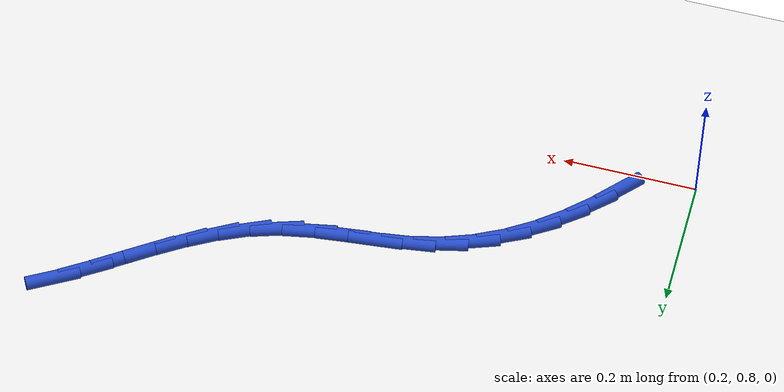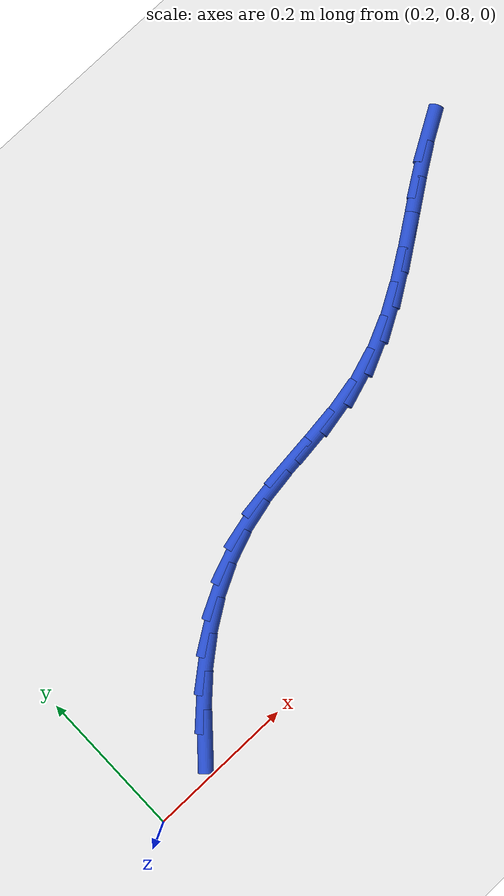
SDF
<sdf version="1.6">
 <world name="default">
  <model name="ground_plane">
   <static>1</static>
   <link name="link">
    <collision name="collision">
     <geometry><plane><normal>0 0 1</normal><size>100 100</size></plane></geometry>
     <surface><friction><ode><mu>100</mu><mu2>50</mu2></ode></friction></surface>
    </collision>
    <visual name="visual">
     <cast_shadows>0</cast_shadows>
     <geometry><plane><normal>0 0 1</normal><size>100 100</size></plane></geometry>
     <material>
      <script><uri>file://media/materials/scripts/gazebo.material</uri><name>Gazebo/WhiteGlow</name></script>
     </material>
    </visual>
   </link>
  </model>
  <model name="line">
   <link name="link_18">
    <pose>0.3087584846728439 0.8377570021700012 0.01 0 1.57 0.845212282976439</pose>
    <collision name="collision">
     <geometry><cylinder><radius>0.01</radius><length>0.08</length></cylinder></geometry>
    </collision>
    <visual name="visual">
     <material>
      <script><name>Gazebo/Blue</name><uri>file://media/materials/scripts/gazebo.material</uri></script>
     </material>
     <geometry><cylinder><radius>0.01</radius><length>0.08</length></cylinder></geometry>
    </visual>
   </link>
   <link name="link_19">
    <pose>0.3413151086751447 0.8744613583930186 0.01 0 1.57 0.7687470295034691</pose>
    <collision name="collision">
     <geometry><cylinder><radius>0.01</radius><length>0.08</length></cylinder></geometry>
    </collision>
    <visual name="visual">
     <material>
      <script><name>Gazebo/Blue</name><uri>file://media/materials/scripts/gazebo.material</uri></script>
     </material>
     <geometry><cylinder><radius>0.01</radius><length>0.08</length></cylinder></geometry>
    </visual>
   </link>
   <link name="link_20">
    <pose>0.3758646777508022 0.9078790902342675 0.01 0 1.57 0.6821018119404471</pose>
    <collision name="collision">
     <geometry><cylinder><radius>0.01</radius><length>0.08</length></cylinder></geometry>
    </collision>
    <visual name="visual">
     <material>
      <script><name>Gazebo/Blue</name><uri>file://media/materials/scripts/gazebo.material</uri></script>
     </material>
     <geometry><cylinder><radius>0.01</radius><length>0.08</length></cylinder></geometry>
    </visual>
   </link>
   <link name="link_21">
    <pose>0.412485047185849 0.9376200872659153 0.01 0 1.57 0.5849272882402394</pose>
    <collision name="collision">
     <geometry><cylinder><radius>0.01</radius><length>0.08</length></cylinder></geometry>
    </collision>
    <visual name="visual">
     <material>
      <script><name>Gazebo/Blue</name><uri>file://media/materials/scripts/gazebo.material</uri></script>
     </material>
     <geometry><cylinder><radius>0.01</radius><length>0.08</length></cylinder></geometry>
    </visual>
   </link>
   <link name="link_22">
    <pose>0.45125407226631703 0.9632942390601287 0.01 0 1.57 0.4775879944381283</pose>
    <collision name="collision">
     <geometry><cylinder><radius>0.01</radius><length>0.08</length></cylinder></geometry>
    </collision>
    <visual name="visual">
     <material>
      <script><name>Gazebo/Blue</name><uri>file://media/materials/scripts/gazebo.material</uri></script>
     </material>
     <geometry><cylinder><radius>0.01</radius><length>0.08</length></cylinder></geometry>
    </visual>
   </link>
   <link name="link_23">
    <pose>0.49224960827823894 0.9845114351890756 0.01 0 1.57 0.36145412227707635</pose>
    <collision name="collision">
     <geometry><cylinder><radius>0.01</radius><length>0.08</length></cylinder></geometry>
    </collision>
    <visual name="visual">
     <material>
      <script><name>Gazebo/Blue</name><uri>file://media/materials/scripts/gazebo.material</uri></script>
     </material>
     <geometry><cylinder><radius>0.01</radius><length>0.08</length></cylinder></geometry>
    </visual>
   </link>
   <link name="link_24">
    <pose>0.5355495105076465 1.0008815652249223 0.01 0 1.57 0.23987250766087118</pose>
    <collision name="collision">
     <geometry><cylinder><radius>0.01</radius><length>0.08</length></cylinder></geometry>
    </collision>
    <visual name="visual">
     <material>
      <script><name>Gazebo/Blue</name><uri>file://media/materials/scripts/gazebo.material</uri></script>
     </material>
     <geometry><cylinder><radius>0.01</radius><length>0.08</length></cylinder></geometry>
    </visual>
   </link>
   <link name="link_25">
    <pose>0.581217037028305 1.012051000995506 0.01 0 1.57 0.14384823755635906</pose>
    <collision name="collision">
     <geometry><cylinder><radius>0.01</radius><length>0.08</length></cylinder></geometry>
    </collision>
    <visual name="visual">
     <material>
      <script><name>Gazebo/Blue</name><uri>file://media/materials/scripts/gazebo.material</uri></script>
     </material>
     <geometry><cylinder><radius>0.01</radius><length>0.08</length></cylinder></geometry>
    </visual>
   </link>
   <link name="link_26">
    <pose>0.6288041666725926 1.0189439350289768 0.01 0 1.57 0.10541199539217004</pose>
    <collision name="collision">
     <geometry><cylinder><radius>0.01</radius><length>0.08</length></cylinder></geometry>
    </collision>
    <visual name="visual">
     <material>
      <script><name>Gazebo/Blue</name><uri>file://media/materials/scripts/gazebo.material</uri></script>
     </material>
     <geometry><cylinder><radius>0.01</radius><length>0.08</length></cylinder></geometry>
    </visual>
   </link>
   <link name="link_27">
    <pose>0.6772295002293567 1.0240675374313675 0.01 0 1.57 0.12316833886986119</pose>
    <collision name="collision">
     <geometry><cylinder><radius>0.01</radius><length>0.08</length></cylinder></geometry>
    </collision>
    <visual name="visual">
     <material>
      <script><name>Gazebo/Blue</name><uri>file://media/materials/scripts/gazebo.material</uri></script>
     </material>
     <geometry><cylinder><radius>0.01</radius><length>0.08</length></cylinder></geometry>
    </visual>
   </link>
   <link name="link_28">
    <pose>0.7253722699110264 1.0300273706896552 0.01 0 1.57 0.19850085061616227</pose>
    <collision name="collision">
     <geometry><cylinder><radius>0.01</radius><length>0.08</length></cylinder></geometry>
    </collision>
    <visual name="visual">
     <material>
      <script><name>Gazebo/Blue</name><uri>file://media/materials/scripts/gazebo.material</uri></script>
     </material>
     <geometry><cylinder><radius>0.01</radius><length>0.08</length></cylinder></geometry>
    </visual>
   </link>
   <link name="link_29">
    <pose>0.772111707930032 1.0394289972908177 0.01 0 1.57 0.3248334006243878</pose>
    <collision name="collision">
     <geometry><cylinder><radius>0.01</radius><length>0.08</length></cylinder></geometry>
    </collision>
    <visual name="visual">
     <material>
      <script><name>Gazebo/Blue</name><uri>file://media/materials/scripts/gazebo.material</uri></script>
     </material>
     <geometry><cylinder><radius>0.01</radius><length>0.08</length></cylinder></geometry>
    </visual>
   </link>
   <link name="link_30">
    <pose>0.8165432968133 1.054391879245468 0.01 0 1.57 0.4434501307316704</pose>
    <collision name="collision">
     <geometry><cylinder><radius>0.01</radius><length>0.08</length></cylinder></geometry>
    </collision>
    <visual name="visual">
     <material>
      <script><name>Gazebo/Blue</name><uri>file://media/materials/scripts/gazebo.material</uri></script>
     </material>
     <geometry><cylinder><radius>0.01</radius><length>0.08</length></cylinder></geometry>
    </visual>
   </link>
   <link name="link_31">
    <pose>0.8588879443335512 1.0745056799400492 0.01 0 1.57 0.5318767649467564</pose>
    <collision name="collision">
     <geometry><cylinder><radius>0.01</radius><length>0.08</length></cylinder></geometry>
    </collision>
    <visual name="visual">
     <material>
      <script><name>Gazebo/Blue</name><uri>file://media/materials/scripts/gazebo.material</uri></script>
     </material>
     <geometry><cylinder><radius>0.01</radius><length>0.08</length></cylinder></geometry>
    </visual>
   </link>
   <link name="link_32">
    <pose>0.8997315099883101 1.0985397023019257 0.01 0 1.57 0.5898053700524903</pose>
    <collision name="collision">
     <geometry><cylinder><radius>0.01</radius><length>0.08</length></cylinder></geometry>
    </collision>
    <visual name="visual">
     <material>
      <script><name>Gazebo/Blue</name><uri>file://media/materials/scripts/gazebo.material</uri></script>
     </material>
     <geometry><cylinder><radius>0.01</radius><length>0.08</length></cylinder></geometry>
    </visual>
   </link>
   <link name="link_33">
    <pose>0.9396600428311411 1.1252628231629824 0.01 0 1.57 0.6185033312914714</pose>
    <collision name="collision">
     <geometry><cylinder><radius>0.01</radius><length>0.08</length></cylinder></geometry>
    </collision>
    <visual name="visual">
     <material>
      <script><name>Gazebo/Blue</name><uri>file://media/materials/scripts/gazebo.material</uri></script>
     </material>
     <geometry><cylinder><radius>0.01</radius><length>0.08</length></cylinder></geometry>
    </visual>
   </link>
   <link name="link_34">
    <pose>0.9792595919156093 1.1534439193551038 0.01 0 1.57 0.6192342919781912</pose>
    <collision name="collision">
     <geometry><cylinder><radius>0.01</radius><length>0.08</length></cylinder></geometry>
    </collision>
    <visual name="visual">
     <material>
      <script><name>Gazebo/Blue</name><uri>file://media/materials/scripts/gazebo.material</uri></script>
     </material>
     <geometry><cylinder><radius>0.01</radius><length>0.08</length></cylinder></geometry>
    </visual>
   </link>
   <link name="link_35">
    <pose>1.019116206295279 1.1818518677101748 0.01 0 1.57 0.5925901608837325</pose>
    <collision name="collision">
     <geometry><cylinder><radius>0.01</radius><length>0.08</length></cylinder></geometry>
    </collision>
    <visual name="visual">
     <material>
      <script><name>Gazebo/Blue</name><uri>file://media/materials/scripts/gazebo.material</uri></script>
     </material>
     <geometry><cylinder><radius>0.01</radius><length>0.08</length></cylinder></geometry>
    </visual>
   </link>
   <link name="link_36">
    <pose>1.0598159350237153 1.2092555450600795 0.01 0 1.57 0.5385139920976149</pose>
    <collision name="collision">
     <geometry><cylinder><radius>0.01</radius><length>0.08</length></cylinder></geometry>
    </collision>
    <visual name="visual">
     <material>
      <script><name>Gazebo/Blue</name><uri>file://media/materials/scripts/gazebo.material</uri></script>
     </material>
     <geometry><cylinder><radius>0.01</radius><length>0.08</length></cylinder></geometry>
    </visual>
   </link>
  </model>
 </world>
</sdf>
